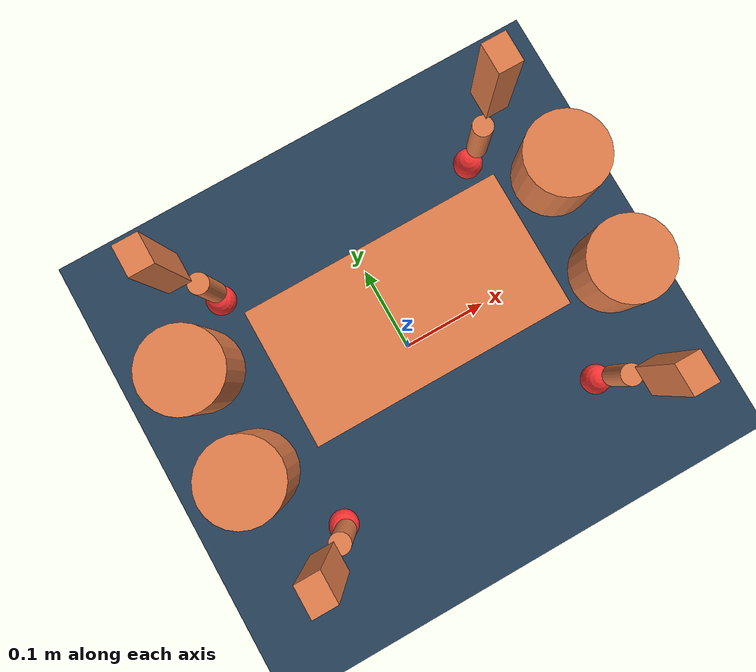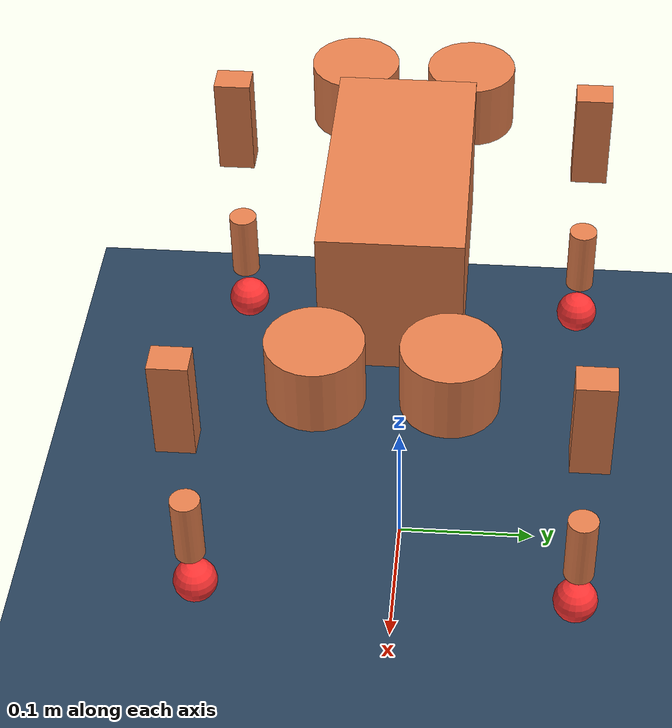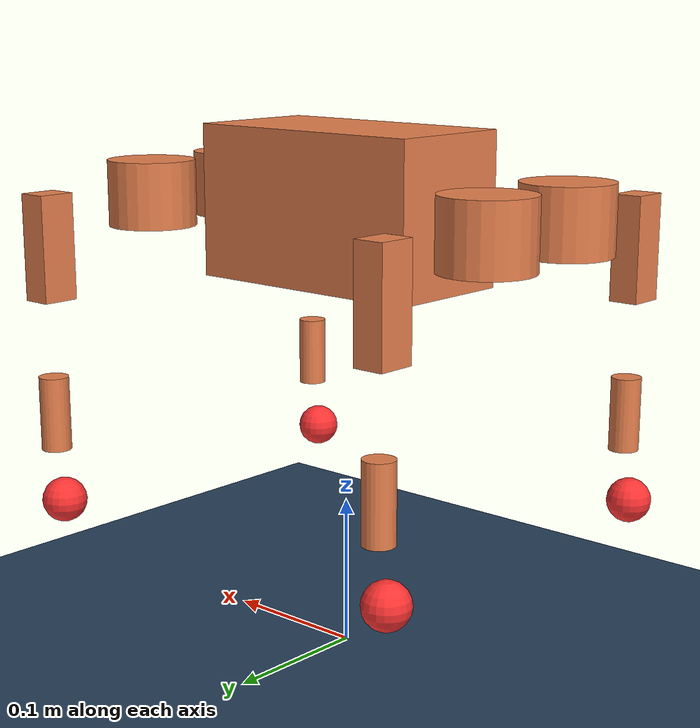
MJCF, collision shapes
<mujoco model="opendoge scene">
  <include file="opendoge.xml"/>

  <statistic center="0 0 0.1" extent="0.8"/>

  <visual>
    <headlight diffuse="0.6 0.6 0.6" ambient="0.3 0.3 0.3" specular="0 0 0"/>
    <rgba haze="0.15 0.25 0.35 1"/>
  </visual>

  <asset>
    <texture type="skybox" builtin="gradient" rgb1="0.3 0.5 0.7" rgb2="0 0 0" width="512" height="3072"/>
    <texture type="2d" name="groundplane" builtin="checker" mark="edge" rgb1="0.2 0.3 0.4" rgb2="0.1 0.2 0.3"
      markrgb="0.8 0.8 0.8" width="300" height="300"/>
    <material name="groundplane" texture="groundplane" texuniform="true" texrepeat="5 5" reflectance="0.2"/>
  </asset>

  <worldbody>
    <light pos="0 0 1.5" dir="0 0 -1" directional="true"/>
    <geom name="floor" size="0 0 0.05" type="plane" material="groundplane"/>
  </worldbody>

  <sensor>
    <!-- feet -->
    <contact name="FL_foot_contact" geom1="floor" geom2="FL" data="found" num="1" reduce="mindist"/>
    <contact name="FR_foot_contact" geom1="floor" geom2="FR" data="found" num="1" reduce="mindist"/>
    <contact name="RL_foot_contact" geom1="floor" geom2="RL" data="found" num="1" reduce="mindist"/>
    <contact name="RR_foot_contact" geom1="floor" geom2="RR" data="found" num="1" reduce="mindist"/>
    <!-- base -->
    <contact name="base1_contact" geom1="floor" geom2="base1" data="found" num="1" reduce="mindist"/>
    <!-- hips -->
    <contact name="FL_hip_contact" geom1="floor" geom2="FL_hip_geom" data="found" num="1" reduce="mindist"/>
    <contact name="FR_hip_contact" geom1="floor" geom2="FR_hip_geom" data="found" num="1" reduce="mindist"/>
    <contact name="RL_hip_contact" geom1="floor" geom2="RL_hip_geom" data="found" num="1" reduce="mindist"/>
    <contact name="RR_hip_contact" geom1="floor" geom2="RR_hip_geom" data="found" num="1" reduce="mindist"/>
    <!-- thighs -->
    <contact name="FL_thigh_contact" geom1="floor" geom2="FL_thigh_geom" data="found" num="1" reduce="mindist"/>
    <contact name="FR_thigh_contact" geom1="floor" geom2="FR_thigh_geom" data="found" num="1" reduce="mindist"/>
    <contact name="RL_thigh_contact" geom1="floor" geom2="RL_thigh_geom" data="found" num="1" reduce="mindist"/>
    <contact name="RR_thigh_contact" geom1="floor" geom2="RR_thigh_geom" data="found" num="1" reduce="mindist"/>
    <!-- calves -->
    <contact name="FL_calf_contact" geom1="floor" geom2="FL_calf_geom" data="found" num="1" reduce="mindist"/>
    <contact name="FR_calf_contact" geom1="floor" geom2="FR_calf_geom" data="found" num="1" reduce="mindist"/>
    <contact name="RL_calf_contact" geom1="floor" geom2="RL_calf_geom" data="found" num="1" reduce="mindist"/>
    <contact name="RR_calf_contact" geom1="floor" geom2="RR_calf_geom" data="found" num="1" reduce="mindist"/>
  </sensor>

  <keyframe>
    <key name="home" qpos="
        0 0 0.17  1 0 0 0
        0 0.5 -1.3
        0 0.5 -1.3
        0 0.7 -1.3
        0 0.7 -1.3"
      ctrl="
        0 0.5 -1.3
        0 0.5 -1.3
        0 0.7 -1.3
        0 0.7 -1.3"/>
  </keyframe>
</mujoco>

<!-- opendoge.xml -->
<mujoco model="opendoge">
  <compiler angle="radian" meshdir="assets" autolimits="true"/>

  <option cone="elliptic" impratio="100" timestep="0.01"/>

  <default>
    <default class="opendoge">
      <geom friction="0.6" margin="0.001" condim="1" solref="0.01 1"/>
      <joint damping="0.5" armature="0.01" frictionloss="0.2"/>
      <position kp="20" forcerange="-6 6"/>
      <default class="abduction">
        <joint axis="1 0 0"/>
      </default>
      <default class="hip">
        <joint axis="0 1 0" range="-0.785 1.134"/>
      </default>
      <default class="knee">
        <joint axis="0 1 0" range="-2.68 -1.04"/>
        <position forcerange="-9 9"/>
      </default>
      <default class="visual">
        <geom type="mesh" contype="0" conaffinity="0" group="2" rgba="0.79 0.82 0.93 1"/>
      </default>
      <default class="collision">
        <geom group="3" contype="1" conaffinity="2" rgba="0.9 0.5 0.3 0.25"
          friction="0 0 0" margin="0.001" condim="1" solref="0.01 1"/>
        <default class="foot">
          <geom type="sphere" size="0.015" priority="1" rgba="1.0 0.2 0.2 0.4"
            solref="0.01 1" solimp="0.015 1 0.023" margin="0.005" condim="6"
            friction="0.4 0.02 0.01"/>
        </default>
      </default>
    </default>
  </default>

  <asset>
    <mesh name="base_link" file="base_link.STL"/>
    <mesh name="FL_hip" file="FL_hip.STL"/>
    <mesh name="FL_thigh" file="FL_thigh.STL"/>
    <mesh name="FL_calf" file="FL_calf.STL"/>
    <mesh name="FL_foot" file="FL_foot.STL"/>
    <mesh name="FR_hip" file="FR_hip.STL"/>
    <mesh name="FR_thigh" file="FR_thigh.STL"/>
    <mesh name="FR_calf" file="FR_calf.STL"/>
    <mesh name="FR_foot" file="FR_foot.STL"/>
    <mesh name="RL_hip" file="RL_hip.STL"/>
    <mesh name="RL_thigh" file="RL_thigh.STL"/>
    <mesh name="RL_calf" file="RL_calf.STL"/>
    <mesh name="RL_foot" file="RL_foot.STL"/>
    <mesh name="RR_hip" file="RR_hip.STL"/>
    <mesh name="RR_thigh" file="RR_thigh.STL"/>
    <mesh name="RR_calf" file="RR_calf.STL"/>
    <mesh name="RR_foot" file="RR_foot.STL"/>
  </asset>

  <worldbody>
    <body name="base" pos="0 0 0.30" childclass="opendoge">
      <inertial pos="0.000134773648275938 1.36367968484041e-06 0.000770353067310358"
        mass="2.2352588780603"
        fullinertia="0.0054247 0.0099197 0.013453 1.29e-06 -9.59e-05 -2e-07"/>
      <freejoint/>
      <site name="imu" pos="0 0 0.03"/>
      <geom type="mesh" mesh="base_link" class="visual"/>
      <geom name="base1" size="0.085 0.045 0.05" type="box" class="collision"/>

      <body name="FL_hip" pos="0.1425 0.039989 0">
        <inertial pos="-0.0019419 -0.00069982 1.3745e-06"
          quat="-0.265811 0.655274 0.265304 0.655419" mass="0.27308"
          diaginertia="0.00010203 8.98057e-05 8.68843e-05"/>
        <joint name="FL_hip_joint" class="abduction" range="-0.785 0.26"/>
        <geom type="mesh" mesh="FL_hip" class="visual"/>
        <geom name="FL_hip_geom" size="0.03 0.0225" type="cylinder" class="collision"/>
        <body name="FL_thigh" pos="0 0.08615 0">
          <inertial pos="-0.0003843 -0.028095 -0.0056139"
            quat="0.928486 -0.246825 -0.101419 -0.258275" mass="0.344"
            diaginertia="0.000317783 0.00026653 0.000146627"/>
          <joint name="FL_thigh_joint" class="hip" range="-0.785 1.134"/>
          <geom type="mesh" mesh="FL_thigh" class="visual"/>
          <geom name="FL_thigh_geom" size="0.01 0.0125 0.035" pos="0.004 0 -0.028" type="box" class="collision"/>
          <body name="FL_calf" pos="0 0 -0.1">
            <inertial pos="0.0049765 -1.1726e-05 -0.047529" mass="0.023132"
              fullinertia="2.88e-05 2.93e-05 1.05e-06 0 9e-08 0"/>
            <joint name="FL_calf_joint" class="knee" range="-2.68 -1.04"/>
            <geom type="mesh" mesh="FL_calf" class="visual"/>
            <geom name="FL_calf_geom" size="0.01 0.025" pos="0.006 0 -0.04" type="cylinder" class="collision"/>
            <geom type="mesh" mesh="FL_foot" class="visual"/>
            <geom name="FL" pos="-1.19561e-05 0 -0.0993915" class="foot"/>
          </body>
        </body>
      </body>

      <body name="FR_hip" pos="0.1425 -0.040075 0">
        <inertial pos="-0.0019419 0.00069983 1.3735e-06"
          quat="0.265811 0.655274 -0.265304 0.655419" mass="0.27308"
          diaginertia="0.00010203 8.98057e-05 8.68843e-05"/>
        <joint name="FR_hip_joint" class="abduction" range="-0.26 0.785"/>
        <geom type="mesh" mesh="FR_hip" class="visual"/>
        <geom name="FR_hip_geom" size="0.03 0.0225" type="cylinder" class="collision"/>
        <body name="FR_thigh" pos="0 -0.0861 0">
          <inertial pos="-0.00039283 0.028155 -0.0056112"
            quat="0.928391 0.247385 -0.101402 0.258085" mass="0.344"
            diaginertia="0.000317975 0.000266712 0.000146673"/>
          <joint name="FR_thigh_joint" class="hip" range="-0.785 1.134"/>
          <geom type="mesh" mesh="FR_thigh" class="visual"/>
          <geom name="FR_thigh_geom" size="0.01 0.0125 0.035" pos="0.004 0 -0.028" type="box" class="collision"/>
          <body name="FR_calf" pos="0 0 -0.1">
            <inertial pos="0.00497648 -1.1726e-05 -0.0475293" mass="0.0231322"
              fullinertia="2.88e-05 2.93e-05 1.05e-06 0 9e-08 0"/>
            <joint name="FR_calf_joint" class="knee" range="-2.68 -1.04"/>
            <geom type="mesh" mesh="FR_calf" class="visual"/>
            <geom name="FR_calf_geom" size="0.01 0.025" pos="0.006 0 -0.04" type="cylinder" class="collision"/>
            <geom type="mesh" mesh="FR_foot" class="visual"/>
            <geom name="FR" pos="-1.19561e-05 0 -0.0993915" class="foot"/>
          </body>
        </body>
      </body>

      <body name="RL_hip" pos="-0.1425 0.040025 0">
        <inertial pos="0.0019419 -0.00069983 1.3735e-06"
          quat="0.265304 0.655419 -0.265811 0.655274" mass="0.27308"
          diaginertia="0.00010203 8.98057e-05 8.68843e-05"/>
        <joint name="RL_hip_joint" class="abduction" range="-0.785 0.26"/>
        <geom type="mesh" mesh="RL_hip" class="visual"/>
        <geom name="RL_hip_geom" size="0.03 0.0225" type="cylinder" class="collision"/>
        <body name="RL_thigh" pos="0 0.08615 0">
          <inertial pos="-0.0003843 -0.028095 -0.0056139"
            quat="0.928486 -0.246825 -0.101419 -0.258275" mass="0.344"
            diaginertia="0.000317783 0.00026653 0.000146627"/>
          <joint name="RL_thigh_joint" class="hip" range="-0.785 1.134"/>
          <geom type="mesh" mesh="RL_thigh" class="visual"/>
          <geom name="RL_thigh_geom" size="0.01 0.0125 0.035" pos="0.004 0 -0.028" type="box" class="collision"/>
          <body name="RL_calf" pos="0 0 -0.1">
            <inertial pos="0.0049765 -1.1726e-05 -0.047529" mass="0.023132"
              fullinertia="2.88e-05 2.93e-05 1.05e-06 0 9e-08 0"/>
            <joint name="RL_calf_joint" class="knee" range="-2.68 -1.04"/>
            <geom type="mesh" mesh="RL_calf" class="visual"/>
            <geom name="RL_calf_geom" size="0.01 0.025" pos="0.006 0 -0.04" type="cylinder" class="collision"/>
            <geom type="mesh" mesh="RL_foot" class="visual"/>
            <geom name="RL" pos="-1.19561e-05 0 -0.0993915" class="foot"/>
          </body>
        </body>
      </body>

      <body name="RR_hip" pos="-0.1425 -0.040025 0">
        <inertial pos="0.0019419 0.00069982 1.3745e-06"
          quat="-0.265304 0.655419 0.265811 0.655274" mass="0.27308"
          diaginertia="0.00010203 8.98057e-05 8.68843e-05"/>
        <joint name="RR_hip_joint" class="abduction" range="-0.26 0.785"/>
        <geom type="mesh" mesh="RR_hip" class="visual"/>
        <geom name="RR_hip_geom" size="0.03 0.0225" type="cylinder" class="collision"/>
        <body name="RR_thigh" pos="0 -0.08615 0">
          <inertial pos="-0.00039283 0.028155 -0.0056112"
            quat="0.928391 0.247385 -0.101402 0.258085" mass="0.344"
            diaginertia="0.000317975 0.000266712 0.000146673"/>
          <joint name="RR_thigh_joint" class="hip" range="-0.785 1.134"/>
          <geom type="mesh" mesh="RR_thigh" class="visual"/>
          <geom name="RR_thigh_geom" size="0.01 0.0125 0.035" pos="0.004 0 -0.028" type="box" class="collision"/>
          <body name="RR_calf" pos="0 0 -0.1">
            <inertial pos="0.0049765 -1.1726e-05 -0.047529" mass="0.023132"
              fullinertia="2.88e-05 2.93e-05 1.05e-06 0 9e-08 0"/>
            <joint name="RR_calf_joint" class="knee" range="-2.68 -1.04"/>
            <geom type="mesh" mesh="RR_calf" class="visual"/>
            <geom name="RR_calf_geom" size="0.01 0.025" pos="0.006 0 -0.04" type="cylinder" class="collision"/>
            <geom type="mesh" mesh="RR_foot" class="visual"/>
            <geom name="RR" pos="-1.19561e-05 0 -0.0993915" class="foot"/>
          </body>
        </body>
      </body>
    </body>
  </worldbody>

  <actuator>
    <position class="abduction" name="FL_hip" joint="FL_hip_joint"/>
    <position class="hip" name="FL_thigh" joint="FL_thigh_joint"/>
    <position class="knee" name="FL_calf" joint="FL_calf_joint"/>
    <position class="abduction" name="FR_hip" joint="FR_hip_joint"/>
    <position class="hip" name="FR_thigh" joint="FR_thigh_joint"/>
    <position class="knee" name="FR_calf" joint="FR_calf_joint"/>
    <position class="abduction" name="RL_hip" joint="RL_hip_joint"/>
    <position class="hip" name="RL_thigh" joint="RL_thigh_joint"/>
    <position class="knee" name="RL_calf" joint="RL_calf_joint"/>
    <position class="abduction" name="RR_hip" joint="RR_hip_joint"/>
    <position class="hip" name="RR_thigh" joint="RR_thigh_joint"/>
    <position class="knee" name="RR_calf" joint="RR_calf_joint"/>
  </actuator>

  <sensor>
    <gyro site="imu" name="gyro"/>
    <velocimeter site="imu" name="local_linvel"/>
    <framezaxis objtype="site" objname="imu" name="upvector"/>
    <framepos objtype="site" objname="imu" name="global_position"/>
    <framelinvel objtype="site" objname="imu" name="global_linvel"/>
    <framepos objtype="geom" objname="FL" name="FL_pos"/>
    <framepos objtype="geom" objname="FR" name="FR_pos"/>
    <framepos objtype="geom" objname="RL" name="RL_pos"/>
    <framepos objtype="geom" objname="RR" name="RR_pos"/>
    <framelinvel objtype="geom" objname="FL" name="FL_vel"/>
    <framelinvel objtype="geom" objname="FR" name="FR_vel"/>
    <framelinvel objtype="geom" objname="RL" name="RL_vel"/>
    <framelinvel objtype="geom" objname="RR" name="RR_vel"/>
  </sensor>
</mujoco>
